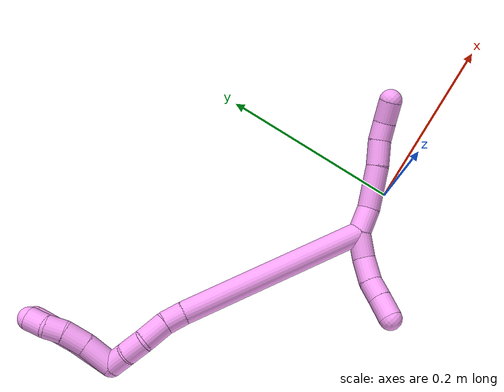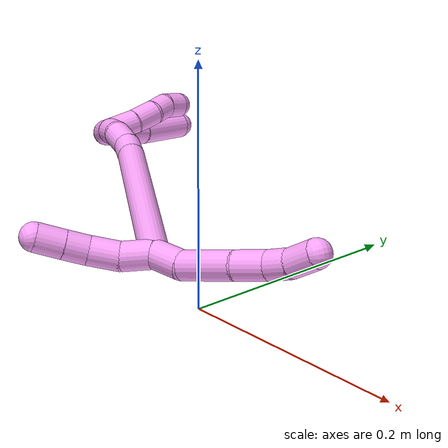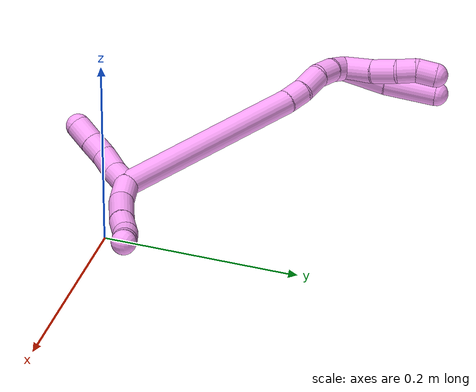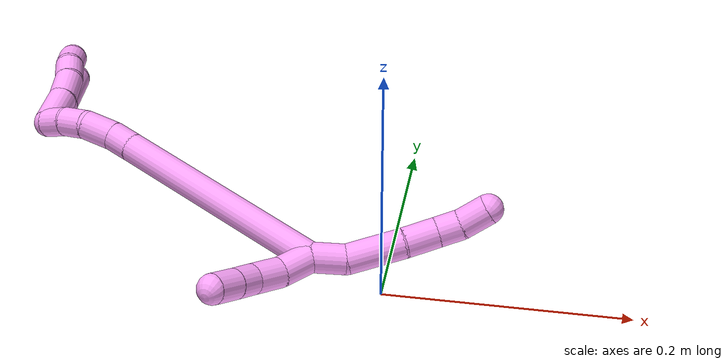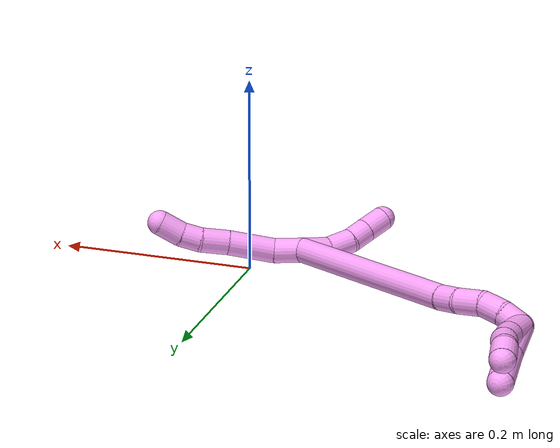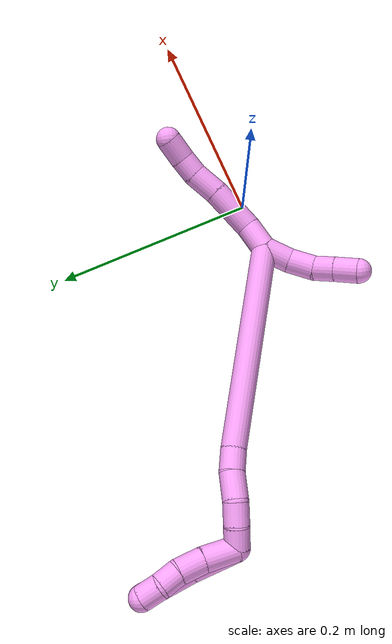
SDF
<sdf version="1.7">
 <world name="default">
  <model name="4">
   <static>0</static>
   <link name="4">
    <collision name="collision-cylinder-e_1_2_8">
     <pose>0.011674 -0.006074 -0.006021 2.35189 0.938503 1.76566</pose>
     <geometry><cylinder><radius>0.0125</radius><length>0.028943</length></cylinder></geometry>
     <surface>
      <friction><ode><mu>1.16</mu><mu2>1.16</mu2><slip1>0</slip1><slip2>0</slip2></ode></friction>
      <contact><ode><kp>1e+06</kp><kd>1</kd><max_vel>0</max_vel><min_depth>0.001</min_depth></ode></contact>
     </surface>
    </collision>
    <visual name="visual-cylinder-e_1_2_8">
     <pose>0.011674 -0.006074 -0.006021 2.35189 0.938503 1.76566</pose>
     <geometry><cylinder><radius>0.0125</radius><length>0.028943</length></cylinder></geometry>
     <material><ambient>1 0.65098 0.996078 1</ambient></material>
    </visual>
    <collision name="collision-cylinder-e_2_8_9">
     <pose>0.042555 -0.015201 -0.02589 2.92453 0.934867 2.71637</pose>
     <geometry><cylinder><radius>0.0125</radius><length>0.04775</length></cylinder></geometry>
     <surface>
      <friction><ode><mu>1.16</mu><mu2>1.16</mu2><slip1>0</slip1><slip2>0</slip2></ode></friction>
      <contact><ode><kp>1e+06</kp><kd>1</kd><max_vel>0</max_vel><min_depth>0.001</min_depth></ode></contact>
     </surface>
    </collision>
    <visual name="visual-cylinder-e_2_8_9">
     <pose>0.042555 -0.015201 -0.02589 2.92453 0.934867 2.71637</pose>
     <geometry><cylinder><radius>0.0125</radius><length>0.04775</length></cylinder></geometry>
     <material><ambient>1 0.65098 0.996078 1</ambient></material>
    </visual>
    <collision name="collision-cylinder-e_3_9_10">
     <pose>0.071968 -0.020271 -0.049186 2.93132 0.812721 2.66063</pose>
     <geometry><cylinder><radius>0.0125</radius><length>0.028106</length></cylinder></geometry>
     <surface>
      <friction><ode><mu>1.16</mu><mu2>1.16</mu2><slip1>0</slip1><slip2>0</slip2></ode></friction>
      <contact><ode><kp>1e+06</kp><kd>1</kd><max_vel>0</max_vel><min_depth>0.001</min_depth></ode></contact>
     </surface>
    </collision>
    <visual name="visual-cylinder-e_3_9_10">
     <pose>0.071968 -0.020271 -0.049186 2.93132 0.812721 2.66063</pose>
     <geometry><cylinder><radius>0.0125</radius><length>0.028106</length></cylinder></geometry>
     <material><ambient>1 0.65098 0.996078 1</ambient></material>
    </visual>
    <collision name="collision-cylinder-e_4_10_11">
     <pose>0.090774 -0.022777 -0.064013 3.051 1.01023 2.97802</pose>
     <geometry><cylinder><radius>0.0125</radius><length>0.020313</length></cylinder></geometry>
     <surface>
      <friction><ode><mu>1.16</mu><mu2>1.16</mu2><slip1>0</slip1><slip2>0</slip2></ode></friction>
      <contact><ode><kp>1e+06</kp><kd>1</kd><max_vel>0</max_vel><min_depth>0.001</min_depth></ode></contact>
     </surface>
    </collision>
    <visual name="visual-cylinder-e_4_10_11">
     <pose>0.090774 -0.022777 -0.064013 3.051 1.01023 2.97802</pose>
     <geometry><cylinder><radius>0.0125</radius><length>0.020313</length></cylinder></geometry>
     <material><ambient>1 0.65098 0.996078 1</ambient></material>
    </visual>
    <collision name="collision-cylinder-e_5_11_6">
     <pose>0.10997 -0.020926 -0.075487 -2.77532 1.01842 -2.50098</pose>
     <geometry><cylinder><radius>0.0125</radius><length>0.024889</length></cylinder></geometry>
     <surface>
      <friction><ode><mu>1.16</mu><mu2>1.16</mu2><slip1>0</slip1><slip2>0</slip2></ode></friction>
      <contact><ode><kp>1e+06</kp><kd>1</kd><max_vel>0</max_vel><min_depth>0.001</min_depth></ode></contact>
     </surface>
    </collision>
    <visual name="visual-cylinder-e_5_11_6">
     <pose>0.10997 -0.020926 -0.075487 -2.77532 1.01842 -2.50098</pose>
     <geometry><cylinder><radius>0.0125</radius><length>0.024889</length></cylinder></geometry>
     <material><ambient>1 0.65098 0.996078 1</ambient></material>
    </visual>
    <collision name="collision-cylinder-e_1_2_12">
     <pose>-0.007445 0.001509 0.011812 -0.127092 -0.55875 0.036505</pose>
     <geometry><cylinder><radius>0.0125</radius><length>0.028089</length></cylinder></geometry>
     <surface>
      <friction><ode><mu>1.16</mu><mu2>1.16</mu2><slip1>0</slip1><slip2>0</slip2></ode></friction>
      <contact><ode><kp>1e+06</kp><kd>1</kd><max_vel>0</max_vel><min_depth>0.001</min_depth></ode></contact>
     </surface>
    </collision>
    <visual name="visual-cylinder-e_1_2_12">
     <pose>-0.007445 0.001509 0.011812 -0.127092 -0.55875 0.036505</pose>
     <geometry><cylinder><radius>0.0125</radius><length>0.028089</length></cylinder></geometry>
     <material><ambient>1 0.65098 0.996078 1</ambient></material>
    </visual>
    <collision name="collision-cylinder-e_2_12_13">
     <pose>-0.019847 0.008037 0.035124 -0.411523 -0.376244 0.079426</pose>
     <geometry><cylinder><radius>0.0125</radius><length>0.02698</length></cylinder></geometry>
     <surface>
      <friction><ode><mu>1.16</mu><mu2>1.16</mu2><slip1>0</slip1><slip2>0</slip2></ode></friction>
      <contact><ode><kp>1e+06</kp><kd>1</kd><max_vel>0</max_vel><min_depth>0.001</min_depth></ode></contact>
     </surface>
    </collision>
    <visual name="visual-cylinder-e_2_12_13">
     <pose>-0.019847 0.008037 0.035124 -0.411523 -0.376244 0.079426</pose>
     <geometry><cylinder><radius>0.0125</radius><length>0.02698</length></cylinder></geometry>
     <material><ambient>1 0.65098 0.996078 1</ambient></material>
    </visual>
    <collision name="collision-cylinder-e_3_13_14">
     <pose>-0.026152 0.017425 0.055902 -0.440072 -0.130646 0.029259</pose>
     <geometry><cylinder><radius>0.0125</radius><length>0.020689</length></cylinder></geometry>
     <surface>
      <friction><ode><mu>1.16</mu><mu2>1.16</mu2><slip1>0</slip1><slip2>0</slip2></ode></friction>
      <contact><ode><kp>1e+06</kp><kd>1</kd><max_vel>0</max_vel><min_depth>0.001</min_depth></ode></contact>
     </surface>
    </collision>
    <visual name="visual-cylinder-e_3_13_14">
     <pose>-0.026152 0.017425 0.055902 -0.440072 -0.130646 0.029259</pose>
     <geometry><cylinder><radius>0.0125</radius><length>0.020689</length></cylinder></geometry>
     <material><ambient>1 0.65098 0.996078 1</ambient></material>
    </visual>
    <collision name="collision-cylinder-e_4_14_5">
     <pose>-0.029317 0.02708 0.075937 -0.456725 -0.150516 0.035045</pose>
     <geometry><cylinder><radius>0.0125</radius><length>0.024242</length></cylinder></geometry>
     <surface>
      <friction><ode><mu>1.16</mu><mu2>1.16</mu2><slip1>0</slip1><slip2>0</slip2></ode></friction>
      <contact><ode><kp>1e+06</kp><kd>1</kd><max_vel>0</max_vel><min_depth>0.001</min_depth></ode></contact>
     </surface>
    </collision>
    <visual name="visual-cylinder-e_4_14_5">
     <pose>-0.029317 0.02708 0.075937 -0.456725 -0.150516 0.035045</pose>
     <geometry><cylinder><radius>0.0125</radius><length>0.024242</length></cylinder></geometry>
     <material><ambient>1 0.65098 0.996078 1</ambient></material>
    </visual>
    <collision name="collision-cylinder-e_1_2_15">
     <pose>-0.089059 0.041638 -0.031268 -2.21491 -1.04171 1.70863</pose>
     <geometry><cylinder><radius>0.0125</radius><length>0.206328</length></cylinder></geometry>
     <surface>
      <friction><ode><mu>1.16</mu><mu2>1.16</mu2><slip1>0</slip1><slip2>0</slip2></ode></friction>
      <contact><ode><kp>1e+06</kp><kd>1</kd><max_vel>0</max_vel><min_depth>0.001</min_depth></ode></contact>
     </surface>
    </collision>
    <visual name="visual-cylinder-e_1_2_15">
     <pose>-0.089059 0.041638 -0.031268 -2.21491 -1.04171 1.70863</pose>
     <geometry><cylinder><radius>0.0125</radius><length>0.206328</length></cylinder></geometry>
     <material><ambient>1 0.65098 0.996078 1</ambient></material>
    </visual>
    <collision name="collision-cylinder-e_2_15_16">
     <pose>-0.187449 0.088566 -0.065065 -2.01661 -1.00984 1.43961</pose>
     <geometry><cylinder><radius>0.0125</radius><length>0.022043</length></cylinder></geometry>
     <surface>
      <friction><ode><mu>1.16</mu><mu2>1.16</mu2><slip1>0</slip1><slip2>0</slip2></ode></friction>
      <contact><ode><kp>1e+06</kp><kd>1</kd><max_vel>0</max_vel><min_depth>0.001</min_depth></ode></contact>
     </surface>
    </collision>
    <visual name="visual-cylinder-e_2_15_16">
     <pose>-0.187449 0.088566 -0.065065 -2.01661 -1.00984 1.43961</pose>
     <geometry><cylinder><radius>0.0125</radius><length>0.022043</length></cylinder></geometry>
     <material><ambient>1 0.65098 0.996078 1</ambient></material>
    </visual>
    <collision name="collision-cylinder-e_3_16_17">
     <pose>-0.208836 0.100612 -0.068104 -1.64631 -1.05875 1.12583</pose>
     <geometry><cylinder><radius>0.0125</radius><length>0.027656</length></cylinder></geometry>
     <surface>
      <friction><ode><mu>1.16</mu><mu2>1.16</mu2><slip1>0</slip1><slip2>0</slip2></ode></friction>
      <contact><ode><kp>1e+06</kp><kd>1</kd><max_vel>0</max_vel><min_depth>0.001</min_depth></ode></contact>
     </surface>
    </collision>
    <visual name="visual-cylinder-e_3_16_17">
     <pose>-0.208836 0.100612 -0.068104 -1.64631 -1.05875 1.12583</pose>
     <geometry><cylinder><radius>0.0125</radius><length>0.027656</length></cylinder></geometry>
     <material><ambient>1 0.65098 0.996078 1</ambient></material>
    </visual>
    <collision name="collision-cylinder-e_4_17_18">
     <pose>-0.231997 0.109621 -0.069733 -2.03104 -1.34811 1.821</pose>
     <geometry><cylinder><radius>0.0125</radius><length>0.022775</length></cylinder></geometry>
     <surface>
      <friction><ode><mu>1.16</mu><mu2>1.16</mu2><slip1>0</slip1><slip2>0</slip2></ode></friction>
      <contact><ode><kp>1e+06</kp><kd>1</kd><max_vel>0</max_vel><min_depth>0.001</min_depth></ode></contact>
     </surface>
    </collision>
    <visual name="visual-cylinder-e_4_17_18">
     <pose>-0.231997 0.109621 -0.069733 -2.03104 -1.34811 1.821</pose>
     <geometry><cylinder><radius>0.0125</radius><length>0.022775</length></cylinder></geometry>
     <material><ambient>1 0.65098 0.996078 1</ambient></material>
    </visual>
    <collision name="collision-cylinder-e_5_18_1">
     <pose>-0.253649 0.111922 -0.071906 -3.096 -1.47088 3.0912</pose>
     <geometry><cylinder><radius>0.0125</radius><length>0.021198</length></cylinder></geometry>
     <surface>
      <friction><ode><mu>1.16</mu><mu2>1.16</mu2><slip1>0</slip1><slip2>0</slip2></ode></friction>
      <contact><ode><kp>1e+06</kp><kd>1</kd><max_vel>0</max_vel><min_depth>0.001</min_depth></ode></contact>
     </surface>
    </collision>
    <visual name="visual-cylinder-e_5_18_1">
     <pose>-0.253649 0.111922 -0.071906 -3.096 -1.47088 3.0912</pose>
     <geometry><cylinder><radius>0.0125</radius><length>0.021198</length></cylinder></geometry>
     <material><ambient>1 0.65098 0.996078 1</ambient></material>
    </visual>
    <collision name="collision-cylinder-e_1_1_19">
     <pose>-0.266118 0.114694 -0.089406 -2.97743 -0.114816 1.21958</pose>
     <geometry><cylinder><radius>0.0125</radius><length>0.033558</length></cylinder></geometry>
     <surface>
      <friction><ode><mu>1.16</mu><mu2>1.16</mu2><slip1>0</slip1><slip2>0</slip2></ode></friction>
      <contact><ode><kp>1e+06</kp><kd>1</kd><max_vel>0</max_vel><min_depth>0.001</min_depth></ode></contact>
     </surface>
    </collision>
    <visual name="visual-cylinder-e_1_1_19">
     <pose>-0.266118 0.114694 -0.089406 -2.97743 -0.114816 1.21958</pose>
     <geometry><cylinder><radius>0.0125</radius><length>0.033558</length></cylinder></geometry>
     <material><ambient>1 0.65098 0.996078 1</ambient></material>
    </visual>
    <collision name="collision-cylinder-e_2_19_20">
     <pose>-0.270849 0.120594 -0.118094 -2.88782 -0.218493 1.42029</pose>
     <geometry><cylinder><radius>0.0125</radius><length>0.025913</length></cylinder></geometry>
     <surface>
      <friction><ode><mu>1.16</mu><mu2>1.16</mu2><slip1>0</slip1><slip2>0</slip2></ode></friction>
      <contact><ode><kp>1e+06</kp><kd>1</kd><max_vel>0</max_vel><min_depth>0.001</min_depth></ode></contact>
     </surface>
    </collision>
    <visual name="visual-cylinder-e_2_19_20">
     <pose>-0.270849 0.120594 -0.118094 -2.88782 -0.218493 1.42029</pose>
     <geometry><cylinder><radius>0.0125</radius><length>0.025913</length></cylinder></geometry>
     <material><ambient>1 0.65098 0.996078 1</ambient></material>
    </visual>
    <collision name="collision-cylinder-e_3_20_21">
     <pose>-0.277968 0.126276 -0.139021 -2.86057 -0.444991 2.02414</pose>
     <geometry><cylinder><radius>0.0125</radius><length>0.020027</length></cylinder></geometry>
     <surface>
      <friction><ode><mu>1.16</mu><mu2>1.16</mu2><slip1>0</slip1><slip2>0</slip2></ode></friction>
      <contact><ode><kp>1e+06</kp><kd>1</kd><max_vel>0</max_vel><min_depth>0.001</min_depth></ode></contact>
     </surface>
    </collision>
    <visual name="visual-cylinder-e_3_20_21">
     <pose>-0.277968 0.126276 -0.139021 -2.86057 -0.444991 2.02414</pose>
     <geometry><cylinder><radius>0.0125</radius><length>0.020027</length></cylinder></geometry>
     <material><ambient>1 0.65098 0.996078 1</ambient></material>
    </visual>
    <collision name="collision-cylinder-e_4_21_4">
     <pose>-0.286899 0.128193 -0.156837 3.07707 -0.467613 -2.8722</pose>
     <geometry><cylinder><radius>0.0125</radius><length>0.020502</length></cylinder></geometry>
     <surface>
      <friction><ode><mu>1.16</mu><mu2>1.16</mu2><slip1>0</slip1><slip2>0</slip2></ode></friction>
      <contact><ode><kp>1e+06</kp><kd>1</kd><max_vel>0</max_vel><min_depth>0.001</min_depth></ode></contact>
     </surface>
    </collision>
    <visual name="visual-cylinder-e_4_21_4">
     <pose>-0.286899 0.128193 -0.156837 3.07707 -0.467613 -2.8722</pose>
     <geometry><cylinder><radius>0.0125</radius><length>0.020502</length></cylinder></geometry>
     <material><ambient>1 0.65098 0.996078 1</ambient></material>
    </visual>
    <collision name="collision-cylinder-e_1_1_22">
     <pose>-0.271935 0.10949 -0.094926 3.02915 -0.336803 -2.50223</pose>
     <geometry><cylinder><radius>0.0125</radius><length>0.046838</length></cylinder></geometry>
     <surface>
      <friction><ode><mu>1.16</mu><mu2>1.16</mu2><slip1>0</slip1><slip2>0</slip2></ode></friction>
      <contact><ode><kp>1e+06</kp><kd>1</kd><max_vel>0</max_vel><min_depth>0.001</min_depth></ode></contact>
     </surface>
    </collision>
    <visual name="visual-cylinder-e_1_1_22">
     <pose>-0.271935 0.10949 -0.094926 3.02915 -0.336803 -2.50223</pose>
     <geometry><cylinder><radius>0.0125</radius><length>0.046838</length></cylinder></geometry>
     <material><ambient>1 0.65098 0.996078 1</ambient></material>
    </visual>
    <collision name="collision-cylinder-e_2_22_3">
     <pose>-0.289345 0.107006 -0.141649 3.14144 -0.372367 -3.14078</pose>
     <geometry><cylinder><radius>0.0125</radius><length>0.053162</length></cylinder></geometry>
     <surface>
      <friction><ode><mu>1.16</mu><mu2>1.16</mu2><slip1>0</slip1><slip2>0</slip2></ode></friction>
      <contact><ode><kp>1e+06</kp><kd>1</kd><max_vel>0</max_vel><min_depth>0.001</min_depth></ode></contact>
     </surface>
    </collision>
    <visual name="visual-cylinder-e_2_22_3">
     <pose>-0.289345 0.107006 -0.141649 3.14144 -0.372367 -3.14078</pose>
     <geometry><cylinder><radius>0.0125</radius><length>0.053162</length></cylinder></geometry>
     <material><ambient>1 0.65098 0.996078 1</ambient></material>
    </visual>
    <collision name="collision-sphere-3">
     <pose>-0.299016 0.107002 -0.166408 0 -0 0</pose>
     <geometry><sphere><radius>0.0125</radius></sphere></geometry>
     <surface>
      <friction><ode><mu>1.16</mu><mu2>1.16</mu2><slip1>0</slip1><slip2>0</slip2></ode></friction>
      <contact><ode><kp>1e+06</kp><kd>1</kd><max_vel>0</max_vel><min_depth>0.001</min_depth></ode></contact>
     </surface>
    </collision>
    <visual name="visual-sphere-3">
     <pose>-0.299016 0.107002 -0.166408 0 -0 0</pose>
     <geometry><sphere><radius>0.0125</radius></sphere></geometry>
     <material><ambient>1 0.65098 0.996078 1</ambient></material>
    </visual>
    <collision name="collision-sphere-22">
     <pose>-0.279674 0.10701 -0.116889 0 -0 0</pose>
     <geometry><sphere><radius>0.0125</radius></sphere></geometry>
     <surface>
      <friction><ode><mu>1.16</mu><mu2>1.16</mu2><slip1>0</slip1><slip2>0</slip2></ode></friction>
      <contact><ode><kp>1e+06</kp><kd>1</kd><max_vel>0</max_vel><min_depth>0.001</min_depth></ode></contact>
     </surface>
    </collision>
    <visual name="visual-sphere-22">
     <pose>-0.279674 0.10701 -0.116889 0 -0 0</pose>
     <geometry><sphere><radius>0.0125</radius></sphere></geometry>
     <material><ambient>1 0.65098 0.996078 1</ambient></material>
    </visual>
    <collision name="collision-sphere-4">
     <pose>-0.291519 0.127603 -0.165968 0 -0 0</pose>
     <geometry><sphere><radius>0.0125</radius></sphere></geometry>
     <surface>
      <friction><ode><mu>1.16</mu><mu2>1.16</mu2><slip1>0</slip1><slip2>0</slip2></ode></friction>
      <contact><ode><kp>1e+06</kp><kd>1</kd><max_vel>0</max_vel><min_depth>0.001</min_depth></ode></contact>
     </surface>
    </collision>
    <visual name="visual-sphere-4">
     <pose>-0.291519 0.127603 -0.165968 0 -0 0</pose>
     <geometry><sphere><radius>0.0125</radius></sphere></geometry>
     <material><ambient>1 0.65098 0.996078 1</ambient></material>
    </visual>
    <collision name="collision-sphere-21">
     <pose>-0.282278 0.128783 -0.147705 0 -0 0</pose>
     <geometry><sphere><radius>0.0125</radius></sphere></geometry>
     <surface>
      <friction><ode><mu>1.16</mu><mu2>1.16</mu2><slip1>0</slip1><slip2>0</slip2></ode></friction>
      <contact><ode><kp>1e+06</kp><kd>1</kd><max_vel>0</max_vel><min_depth>0.001</min_depth></ode></contact>
     </surface>
    </collision>
    <visual name="visual-sphere-21">
     <pose>-0.282278 0.128783 -0.147705 0 -0 0</pose>
     <geometry><sphere><radius>0.0125</radius></sphere></geometry>
     <material><ambient>1 0.65098 0.996078 1</ambient></material>
    </visual>
    <collision name="collision-sphere-20">
     <pose>-0.273657 0.123769 -0.130338 0 -0 0</pose>
     <geometry><sphere><radius>0.0125</radius></sphere></geometry>
     <surface>
      <friction><ode><mu>1.16</mu><mu2>1.16</mu2><slip1>0</slip1><slip2>0</slip2></ode></friction>
      <contact><ode><kp>1e+06</kp><kd>1</kd><max_vel>0</max_vel><min_depth>0.001</min_depth></ode></contact>
     </surface>
    </collision>
    <visual name="visual-sphere-20">
     <pose>-0.273657 0.123769 -0.130338 0 -0 0</pose>
     <geometry><sphere><radius>0.0125</radius></sphere></geometry>
     <material><ambient>1 0.65098 0.996078 1</ambient></material>
    </visual>
    <collision name="collision-sphere-6">
     <pose>0.120564 -0.018588 -0.081584 0 -0 0</pose>
     <geometry><sphere><radius>0.0125</radius></sphere></geometry>
     <surface>
      <friction><ode><mu>1.16</mu><mu2>1.16</mu2><slip1>0</slip1><slip2>0</slip2></ode></friction>
      <contact><ode><kp>1e+06</kp><kd>1</kd><max_vel>0</max_vel><min_depth>0.001</min_depth></ode></contact>
     </surface>
    </collision>
    <visual name="visual-sphere-6">
     <pose>0.120564 -0.018588 -0.081584 0 -0 0</pose>
     <geometry><sphere><radius>0.0125</radius></sphere></geometry>
     <material><ambient>1 0.65098 0.996078 1</ambient></material>
    </visual>
    <collision name="collision-sphere-11">
     <pose>0.099376 -0.023265 -0.06939 0 -0 0</pose>
     <geometry><sphere><radius>0.0125</radius></sphere></geometry>
     <surface>
      <friction><ode><mu>1.16</mu><mu2>1.16</mu2><slip1>0</slip1><slip2>0</slip2></ode></friction>
      <contact><ode><kp>1e+06</kp><kd>1</kd><max_vel>0</max_vel><min_depth>0.001</min_depth></ode></contact>
     </surface>
    </collision>
    <visual name="visual-sphere-11">
     <pose>0.099376 -0.023265 -0.06939 0 -0 0</pose>
     <geometry><sphere><radius>0.0125</radius></sphere></geometry>
     <material><ambient>1 0.65098 0.996078 1</ambient></material>
    </visual>
    <collision name="collision-sphere-10">
     <pose>0.082172 -0.022288 -0.058635 0 -0 0</pose>
     <geometry><sphere><radius>0.0125</radius></sphere></geometry>
     <surface>
      <friction><ode><mu>1.16</mu><mu2>1.16</mu2><slip1>0</slip1><slip2>0</slip2></ode></friction>
      <contact><ode><kp>1e+06</kp><kd>1</kd><max_vel>0</max_vel><min_depth>0.001</min_depth></ode></contact>
     </surface>
    </collision>
    <visual name="visual-sphere-10">
     <pose>0.082172 -0.022288 -0.058635 0 -0 0</pose>
     <geometry><sphere><radius>0.0125</radius></sphere></geometry>
     <material><ambient>1 0.65098 0.996078 1</ambient></material>
    </visual>
    <collision name="collision-sphere-9">
     <pose>0.061763 -0.018255 -0.039737 0 -0 0</pose>
     <geometry><sphere><radius>0.0125</radius></sphere></geometry>
     <surface>
      <friction><ode><mu>1.16</mu><mu2>1.16</mu2><slip1>0</slip1><slip2>0</slip2></ode></friction>
      <contact><ode><kp>1e+06</kp><kd>1</kd><max_vel>0</max_vel><min_depth>0.001</min_depth></ode></contact>
     </surface>
    </collision>
    <visual name="visual-sphere-9">
     <pose>0.061763 -0.018255 -0.039737 0 -0 0</pose>
     <geometry><sphere><radius>0.0125</radius></sphere></geometry>
     <material><ambient>1 0.65098 0.996078 1</ambient></material>
    </visual>
    <collision name="collision-sphere-2">
     <geometry><sphere><radius>0.0125</radius></sphere></geometry>
     <surface>
      <friction><ode><mu>1.16</mu><mu2>1.16</mu2><slip1>0</slip1><slip2>0</slip2></ode></friction>
      <contact><ode><kp>1e+06</kp><kd>1</kd><max_vel>0</max_vel><min_depth>0.001</min_depth></ode></contact>
     </surface>
    </collision>
    <visual name="visual-sphere-2">
     <geometry><sphere><radius>0.0125</radius></sphere></geometry>
     <material><ambient>1 0.65098 0.996078 1</ambient></material>
    </visual>
    <collision name="collision-sphere-19">
     <pose>-0.26804 0.117418 -0.105851 0 -0 0</pose>
     <geometry><sphere><radius>0.0125</radius></sphere></geometry>
     <surface>
      <friction><ode><mu>1.16</mu><mu2>1.16</mu2><slip1>0</slip1><slip2>0</slip2></ode></friction>
      <contact><ode><kp>1e+06</kp><kd>1</kd><max_vel>0</max_vel><min_depth>0.001</min_depth></ode></contact>
     </surface>
    </collision>
    <visual name="visual-sphere-19">
     <pose>-0.26804 0.117418 -0.105851 0 -0 0</pose>
     <geometry><sphere><radius>0.0125</radius></sphere></geometry>
     <material><ambient>1 0.65098 0.996078 1</ambient></material>
    </visual>
    <collision name="collision-sphere-8">
     <pose>0.023347 -0.012147 -0.012043 0 -0 0</pose>
     <geometry><sphere><radius>0.0125</radius></sphere></geometry>
     <surface>
      <friction><ode><mu>1.16</mu><mu2>1.16</mu2><slip1>0</slip1><slip2>0</slip2></ode></friction>
      <contact><ode><kp>1e+06</kp><kd>1</kd><max_vel>0</max_vel><min_depth>0.001</min_depth></ode></contact>
     </surface>
    </collision>
    <visual name="visual-sphere-8">
     <pose>0.023347 -0.012147 -0.012043 0 -0 0</pose>
     <geometry><sphere><radius>0.0125</radius></sphere></geometry>
     <material><ambient>1 0.65098 0.996078 1</ambient></material>
    </visual>
    <collision name="collision-sphere-12">
     <pose>-0.01489 0.003019 0.023625 0 -0 0</pose>
     <geometry><sphere><radius>0.0125</radius></sphere></geometry>
     <surface>
      <friction><ode><mu>1.16</mu><mu2>1.16</mu2><slip1>0</slip1><slip2>0</slip2></ode></friction>
      <contact><ode><kp>1e+06</kp><kd>1</kd><max_vel>0</max_vel><min_depth>0.001</min_depth></ode></contact>
     </surface>
    </collision>
    <visual name="visual-sphere-12">
     <pose>-0.01489 0.003019 0.023625 0 -0 0</pose>
     <geometry><sphere><radius>0.0125</radius></sphere></geometry>
     <material><ambient>1 0.65098 0.996078 1</ambient></material>
    </visual>
    <collision name="collision-sphere-13">
     <pose>-0.024804 0.013056 0.046623 0 -0 0</pose>
     <geometry><sphere><radius>0.0125</radius></sphere></geometry>
     <surface>
      <friction><ode><mu>1.16</mu><mu2>1.16</mu2><slip1>0</slip1><slip2>0</slip2></ode></friction>
      <contact><ode><kp>1e+06</kp><kd>1</kd><max_vel>0</max_vel><min_depth>0.001</min_depth></ode></contact>
     </surface>
    </collision>
    <visual name="visual-sphere-13">
     <pose>-0.024804 0.013056 0.046623 0 -0 0</pose>
     <geometry><sphere><radius>0.0125</radius></sphere></geometry>
     <material><ambient>1 0.65098 0.996078 1</ambient></material>
    </visual>
    <collision name="collision-sphere-14">
     <pose>-0.027499 0.021795 0.065181 0 -0 0</pose>
     <geometry><sphere><radius>0.0125</radius></sphere></geometry>
     <surface>
      <friction><ode><mu>1.16</mu><mu2>1.16</mu2><slip1>0</slip1><slip2>0</slip2></ode></friction>
      <contact><ode><kp>1e+06</kp><kd>1</kd><max_vel>0</max_vel><min_depth>0.001</min_depth></ode></contact>
     </surface>
    </collision>
    <visual name="visual-sphere-14">
     <pose>-0.027499 0.021795 0.065181 0 -0 0</pose>
     <geometry><sphere><radius>0.0125</radius></sphere></geometry>
     <material><ambient>1 0.65098 0.996078 1</ambient></material>
    </visual>
    <collision name="collision-sphere-5">
     <pose>-0.031134 0.032365 0.086692 0 -0 0</pose>
     <geometry><sphere><radius>0.0125</radius></sphere></geometry>
     <surface>
      <friction><ode><mu>1.16</mu><mu2>1.16</mu2><slip1>0</slip1><slip2>0</slip2></ode></friction>
      <contact><ode><kp>1e+06</kp><kd>1</kd><max_vel>0</max_vel><min_depth>0.001</min_depth></ode></contact>
     </surface>
    </collision>
    <visual name="visual-sphere-5">
     <pose>-0.031134 0.032365 0.086692 0 -0 0</pose>
     <geometry><sphere><radius>0.0125</radius></sphere></geometry>
     <material><ambient>1 0.65098 0.996078 1</ambient></material>
    </visual>
    <collision name="collision-sphere-15">
     <pose>-0.178117 0.083275 -0.062537 0 -0 0</pose>
     <geometry><sphere><radius>0.0125</radius></sphere></geometry>
     <surface>
      <friction><ode><mu>1.16</mu><mu2>1.16</mu2><slip1>0</slip1><slip2>0</slip2></ode></friction>
      <contact><ode><kp>1e+06</kp><kd>1</kd><max_vel>0</max_vel><min_depth>0.001</min_depth></ode></contact>
     </surface>
    </collision>
    <visual name="visual-sphere-15">
     <pose>-0.178117 0.083275 -0.062537 0 -0 0</pose>
     <geometry><sphere><radius>0.0125</radius></sphere></geometry>
     <material><ambient>1 0.65098 0.996078 1</ambient></material>
    </visual>
    <collision name="collision-sphere-16">
     <pose>-0.196782 0.093856 -0.067593 0 -0 0</pose>
     <geometry><sphere><radius>0.0125</radius></sphere></geometry>
     <surface>
      <friction><ode><mu>1.16</mu><mu2>1.16</mu2><slip1>0</slip1><slip2>0</slip2></ode></friction>
      <contact><ode><kp>1e+06</kp><kd>1</kd><max_vel>0</max_vel><min_depth>0.001</min_depth></ode></contact>
     </surface>
    </collision>
    <visual name="visual-sphere-16">
     <pose>-0.196782 0.093856 -0.067593 0 -0 0</pose>
     <geometry><sphere><radius>0.0125</radius></sphere></geometry>
     <material><ambient>1 0.65098 0.996078 1</ambient></material>
    </visual>
    <collision name="collision-sphere-17">
     <pose>-0.22089 0.107367 -0.068616 0 -0 0</pose>
     <geometry><sphere><radius>0.0125</radius></sphere></geometry>
     <surface>
      <friction><ode><mu>1.16</mu><mu2>1.16</mu2><slip1>0</slip1><slip2>0</slip2></ode></friction>
      <contact><ode><kp>1e+06</kp><kd>1</kd><max_vel>0</max_vel><min_depth>0.001</min_depth></ode></contact>
     </surface>
    </collision>
    <visual name="visual-sphere-17">
     <pose>-0.22089 0.107367 -0.068616 0 -0 0</pose>
     <geometry><sphere><radius>0.0125</radius></sphere></geometry>
     <material><ambient>1 0.65098 0.996078 1</ambient></material>
    </visual>
    <collision name="collision-sphere-18">
     <pose>-0.243103 0.111874 -0.07085 0 -0 0</pose>
     <geometry><sphere><radius>0.0125</radius></sphere></geometry>
     <surface>
      <friction><ode><mu>1.16</mu><mu2>1.16</mu2><slip1>0</slip1><slip2>0</slip2></ode></friction>
      <contact><ode><kp>1e+06</kp><kd>1</kd><max_vel>0</max_vel><min_depth>0.001</min_depth></ode></contact>
     </surface>
    </collision>
    <visual name="visual-sphere-18">
     <pose>-0.243103 0.111874 -0.07085 0 -0 0</pose>
     <geometry><sphere><radius>0.0125</radius></sphere></geometry>
     <material><ambient>1 0.65098 0.996078 1</ambient></material>
    </visual>
    <collision name="collision-sphere-1">
     <pose>-0.264196 0.11197 -0.072962 0 -0 0</pose>
     <geometry><sphere><radius>0.0125</radius></sphere></geometry>
     <surface>
      <friction><ode><mu>1.16</mu><mu2>1.16</mu2><slip1>0</slip1><slip2>0</slip2></ode></friction>
      <contact><ode><kp>1e+06</kp><kd>1</kd><max_vel>0</max_vel><min_depth>0.001</min_depth></ode></contact>
     </surface>
    </collision>
    <visual name="visual-sphere-1">
     <pose>-0.264196 0.11197 -0.072962 0 -0 0</pose>
     <geometry><sphere><radius>0.0125</radius></sphere></geometry>
     <material><ambient>1 0.65098 0.996078 1</ambient></material>
    </visual>
    <inertial>
     <pose>-0.116644 0.053286 -0.051485 0 -0 0</pose>
     <mass>0.75</mass>
     <inertia>
      <ixx>0.000287</ixx>
      <ixy>0</ixy>
      <ixz>0</ixz>
      <iyy>0.001015</iyy>
      <iyz>0</iyz>
      <izz>0.000322</izz>
     </inertia>
    </inertial>
   </link>
   <pose>-0.057334 0.002388 0.027658 1.61217 -0.376852 -0.27857</pose>
  </model>
 </world>
</sdf>
